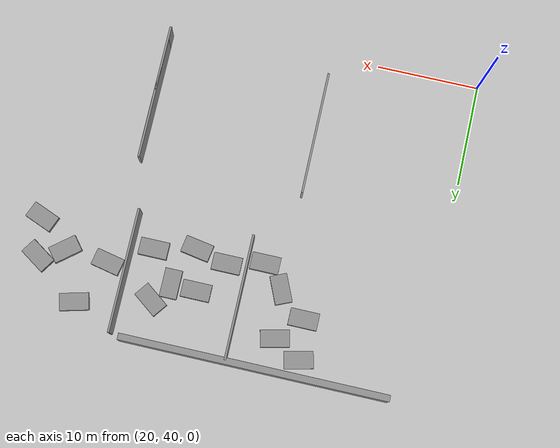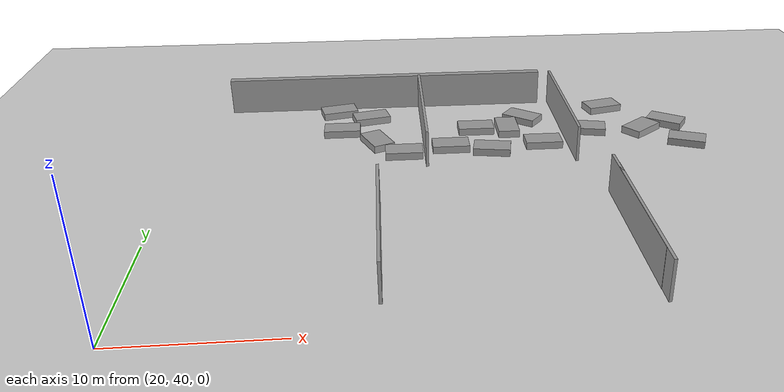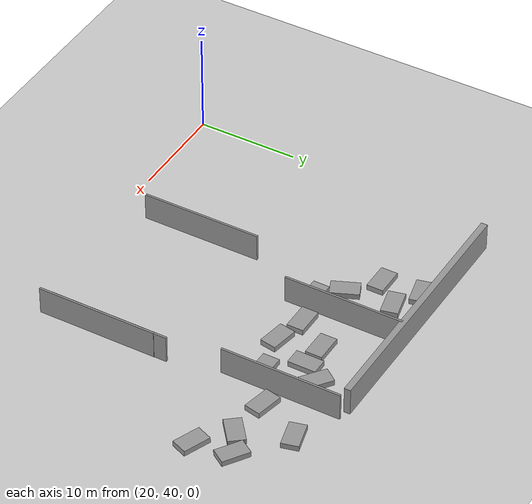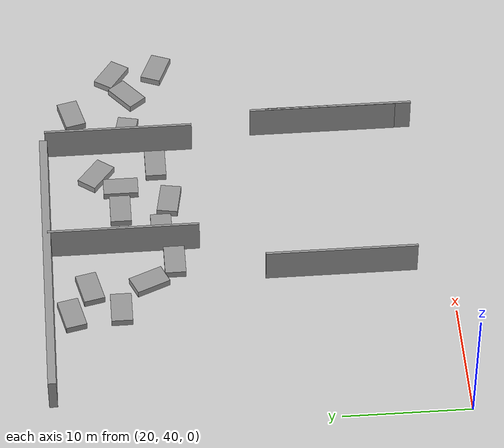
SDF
<sdf version="1.7">
 <world name="default">
  <model name="ground_plane">
   <static>1</static>
   <link name="link">
    <collision name="collision_collision">
     <geometry><plane><normal>0 0 1</normal><size>100 100</size></plane></geometry>
     <surface><friction><ode><mu>100</mu><mu2>50</mu2></ode></friction></surface>
    </collision>
    <visual name="visual">
     <cast_shadows>0</cast_shadows>
     <geometry><plane><normal>0 0 1</normal><size>100 100</size></plane></geometry>
     <material>
      <script><uri>file://media/materials/scripts/gazebo.material</uri><name>Gazebo/Grey</name></script>
     </material>
    </visual>
   </link>
  </model>
  <model name="grey_wall_long_2_clone">
   <link name="link">
    <pose>0 0 1.37589 0 -0 0</pose>
    <inertial>
     <inertia><ixx>0</ixx><ixy>0</ixy><ixz>0</ixz><iyy>0</iyy><iyz>0</iyz><izz>0</izz></inertia>
     <mass>0</mass>
    </inertial>
    <visual name="visual">
     <cast_shadows>0</cast_shadows>
     <geometry><box><size>25.8815 0.642976 2.8</size></box></geometry>
     <material>
      <script>
       <uri>model://grey_wall/materials/scripts</uri>
       <uri>model://grey_wall/materials/textures</uri>
       <name>vrc/grey_wall</name>
      </script>
      <shader type="pixel"><normal_map>__default__</normal_map></shader>
      <ambient>1 1 1 1</ambient>
      <diffuse>1 1 1 1</diffuse>
      <specular>0 0 0 1</specular>
      <emissive>0 0 0 1</emissive>
     </material>
    </visual>
    <collision name="collision_collision">
     <geometry><box><size>25.8815 0.642976 2.8</size></box></geometry>
     <surface>
      <friction>
       <ode><mu>1</mu><mu2>1</mu2><fdir1>0 0 0</fdir1><slip1>0</slip1><slip2>0</slip2></ode>
       <torsional>
        <coefficient>1</coefficient>
        <patch_radius>0</patch_radius>
        <surface_radius>0</surface_radius>
        <use_patch_radius>1</use_patch_radius>
        <ode><slip>0</slip></ode>
       </torsional>
      </friction>
      <bounce><restitution_coefficient>0</restitution_coefficient><threshold>1e+06</threshold></bounce>
      <contact>
       <collide_without_contact>0</collide_without_contact>
       <collide_without_contact_bitmask>1</collide_without_contact_bitmask>
       <collide_bitmask>1</collide_bitmask>
       <ode>
        <soft_cfm>0</soft_cfm>
        <soft_erp>0.2</soft_erp>
        <kp>1e+13</kp>
        <kd>1</kd>
        <max_vel>0.01</max_vel>
        <min_depth>0</min_depth>
       </ode>
       <bullet>
        <split_impulse>1</split_impulse>
        <split_impulse_penetration_threshold>-0.01</split_impulse_penetration_threshold>
        <soft_cfm>0</soft_cfm>
        <soft_erp>0.2</soft_erp>
        <kp>1e+13</kp>
        <kd>1</kd>
       </bullet>
      </contact>
     </surface>
    </collision>
   </link>
   <static>1</static>
   <pose>35.559 71.815 0 0 -0 0</pose>
  </model>
  <model name="grey_wall_12m_vertial_1_clone_0_clone">
   <link name="link">
    <pose>0.289112 -0.003891 1.4 0 0 -1.5701</pose>
    <inertial>
     <inertia><ixx>0</ixx><ixy>0</ixy><ixz>0</ixz><iyy>0</iyy><iyz>0</iyz><izz>0</izz></inertia>
     <mass>0</mass>
    </inertial>
    <visual name="visual">
     <cast_shadows>0</cast_shadows>
     <geometry><box><size>12.0527 0.2 2.8</size></box></geometry>
     <material>
      <script>
       <uri>model://grey_wall/materials/scripts</uri>
       <uri>model://grey_wall/materials/textures</uri>
       <name>vrc/grey_wall</name>
      </script>
      <shader type="pixel"/>
      <ambient>1 1 1 1</ambient>
      <diffuse>1 1 1 1</diffuse>
      <specular>0 0 0 1</specular>
      <emissive>0 0 0 1</emissive>
     </material>
    </visual>
    <collision name="collision_collision">
     <geometry><box><size>12.0527 0.2 2.8</size></box></geometry>
     <surface>
      <friction>
       <ode><mu>1</mu><mu2>1</mu2><fdir1>0 0 0</fdir1><slip1>0</slip1><slip2>0</slip2></ode>
       <torsional>
        <coefficient>1</coefficient>
        <patch_radius>0</patch_radius>
        <surface_radius>0</surface_radius>
        <use_patch_radius>1</use_patch_radius>
        <ode><slip>0</slip></ode>
       </torsional>
      </friction>
      <bounce><restitution_coefficient>0</restitution_coefficient><threshold>1e+06</threshold></bounce>
      <contact>
       <collide_without_contact>0</collide_without_contact>
       <collide_without_contact_bitmask>1</collide_without_contact_bitmask>
       <collide_bitmask>1</collide_bitmask>
       <ode>
        <soft_cfm>0</soft_cfm>
        <soft_erp>0.2</soft_erp>
        <kp>1e+13</kp>
        <kd>1</kd>
        <max_vel>0.01</max_vel>
        <min_depth>0</min_depth>
       </ode>
       <bullet>
        <split_impulse>1</split_impulse>
        <split_impulse_penetration_threshold>-0.01</split_impulse_penetration_threshold>
        <soft_cfm>0</soft_cfm>
        <soft_erp>0.2</soft_erp>
        <kp>1e+13</kp>
        <kd>1</kd>
       </bullet>
      </contact>
     </surface>
    </collision>
   </link>
   <static>1</static>
   <pose>34.3896 48.6444 0 0 -0 0</pose>
  </model>
  <model name="grey_wall_12m_vertial_1_clone_0_clone_0_clone">
   <link name="link">
    <pose>0.289112 -0.003891 1.4 0 0 -1.5701</pose>
    <inertial>
     <inertia><ixx>0</ixx><ixy>0</ixy><ixz>0</ixz><iyy>0</iyy><iyz>0</iyz><izz>0</izz></inertia>
     <mass>0</mass>
    </inertial>
    <visual name="visual">
     <cast_shadows>0</cast_shadows>
     <geometry><box><size>12.0527 0.2 2.8</size></box></geometry>
     <material>
      <script>
       <uri>model://grey_wall/materials/scripts</uri>
       <uri>model://grey_wall/materials/textures</uri>
       <name>vrc/grey_wall</name>
      </script>
      <shader type="pixel"/>
      <ambient>1 1 1 1</ambient>
      <diffuse>1 1 1 1</diffuse>
      <specular>0 0 0 1</specular>
      <emissive>0 0 0 1</emissive>
     </material>
    </visual>
    <collision name="collision_collision">
     <geometry><box><size>12.0527 0.2 2.8</size></box></geometry>
     <surface>
      <friction>
       <ode><mu>1</mu><mu2>1</mu2><fdir1>0 0 0</fdir1><slip1>0</slip1><slip2>0</slip2></ode>
       <torsional>
        <coefficient>1</coefficient>
        <patch_radius>0</patch_radius>
        <surface_radius>0</surface_radius>
        <use_patch_radius>1</use_patch_radius>
        <ode><slip>0</slip></ode>
       </torsional>
      </friction>
      <bounce><restitution_coefficient>0</restitution_coefficient><threshold>1e+06</threshold></bounce>
      <contact>
       <collide_without_contact>0</collide_without_contact>
       <collide_without_contact_bitmask>1</collide_without_contact_bitmask>
       <collide_bitmask>1</collide_bitmask>
       <ode>
        <soft_cfm>0</soft_cfm>
        <soft_erp>0.2</soft_erp>
        <kp>1e+13</kp>
        <kd>1</kd>
        <max_vel>0.01</max_vel>
        <min_depth>0</min_depth>
       </ode>
       <bullet>
        <split_impulse>1</split_impulse>
        <split_impulse_penetration_threshold>-0.01</split_impulse_penetration_threshold>
        <soft_cfm>0</soft_cfm>
        <soft_erp>0.2</soft_erp>
        <kp>1e+13</kp>
        <kd>1</kd>
       </bullet>
      </contact>
     </surface>
    </collision>
   </link>
   <static>1</static>
   <pose>50.4305 48.7141 0 0 -0 0</pose>
  </model>
  <model name="unit_box_clone_clone_7">
   <pose>31.5373 70.106 0.281294 1.5708 0 0.230556</pose>
   <link name="link">
    <inertial>
     <mass>1</mass>
     <inertia>
      <ixx>0.166667</ixx>
      <ixy>0</ixy>
      <ixz>0</ixz>
      <iyy>0.166667</iyy>
      <iyz>0</iyz>
      <izz>0.166667</izz>
     </inertia>
    </inertial>
    <collision name="collision_collision">
     <geometry><box><size>2.81196 0.562598 1.66888</size></box></geometry>
    </collision>
    <visual name="visual">
     <geometry><box><size>2.81196 0.562598 1.66888</size></box></geometry>
     <material>
      <script><name>Gazebo/Grey</name><uri>file://media/materials/scripts/gazebo.material</uri></script>
     </material>
    </visual>
   </link>
  </model>
  <model name="unit_box_clone_clone_8">
   <pose>34.6328 63.8858 0.281299 1.5708 -0 1.98273</pose>
   <link name="link">
    <inertial>
     <mass>1</mass>
     <inertia>
      <ixx>0.166667</ixx>
      <ixy>0</ixy>
      <ixz>0</ixz>
      <iyy>0.166667</iyy>
      <iyz>0</iyz>
      <izz>0.166667</izz>
     </inertia>
    </inertial>
    <collision name="collision_collision">
     <geometry><box><size>2.81196 0.562598 1.66888</size></box></geometry>
    </collision>
    <visual name="visual">
     <geometry><box><size>2.81196 0.562598 1.66888</size></box></geometry>
     <material>
      <script><name>Gazebo/Grey</name><uri>file://media/materials/scripts/gazebo.material</uri></script>
     </material>
    </visual>
   </link>
  </model>
  <model name="unit_box_clone_clone_10">
   <pose>34.1826 68.6036 0.281294 1.5708 -0 0.229751</pose>
   <link name="link">
    <inertial>
     <mass>1</mass>
     <inertia>
      <ixx>0.166667</ixx>
      <ixy>0</ixy>
      <ixz>0</ixz>
      <iyy>0.166667</iyy>
      <iyz>0</iyz>
      <izz>0.166667</izz>
     </inertia>
    </inertial>
    <collision name="collision_collision">
     <geometry><box><size>2.81196 0.562598 1.66888</size></box></geometry>
    </collision>
    <visual name="visual">
     <geometry><box><size>2.81196 0.562598 1.66888</size></box></geometry>
     <material>
      <script><name>Gazebo/Grey</name><uri>file://media/materials/scripts/gazebo.material</uri></script>
     </material>
    </visual>
   </link>
  </model>
  <model name="unit_box_clone_clone_12">
   <pose>43.3543 61.8518 0.281287 -1.57078 -0 -0.170834</pose>
   <link name="link">
    <inertial>
     <mass>1</mass>
     <inertia>
      <ixx>0.166667</ixx>
      <ixy>0</ixy>
      <ixz>0</ixz>
      <iyy>0.166667</iyy>
      <iyz>0</iyz>
      <izz>0.166667</izz>
     </inertia>
    </inertial>
    <collision name="collision_collision">
     <geometry><box><size>2.81196 0.562598 1.66888</size></box></geometry>
    </collision>
    <visual name="visual">
     <geometry><box><size>2.81196 0.562598 1.66888</size></box></geometry>
     <material>
      <script><name>Gazebo/Grey</name><uri>file://media/materials/scripts/gazebo.material</uri></script>
     </material>
    </visual>
   </link>
  </model>
  <model name="unit_box_clone_clone_13">
   <pose>42.5179 65.8413 0.281103 1.5708 -0.00014 3.1415</pose>
   <link name="link">
    <inertial>
     <mass>1</mass>
     <inertia>
      <ixx>0.166667</ixx>
      <ixy>0</ixy>
      <ixz>0</ixz>
      <iyy>0.166667</iyy>
      <iyz>0</iyz>
      <izz>0.166667</izz>
     </inertia>
    </inertial>
    <collision name="collision_collision">
     <geometry><box><size>2.81196 0.562598 1.66888</size></box></geometry>
    </collision>
    <visual name="visual">
     <geometry><box><size>2.81196 0.562598 1.66888</size></box></geometry>
     <material>
      <script><name>Gazebo/Grey</name><uri>file://media/materials/scripts/gazebo.material</uri></script>
     </material>
    </visual>
   </link>
  </model>
  <model name="unit_box_clone_clone_15">
   <pose>45.0326 65.7121 0.281103 -1.5708 -0.00014 1.57076</pose>
   <link name="link">
    <inertial>
     <mass>1</mass>
     <inertia>
      <ixx>0.166667</ixx>
      <ixy>0</ixy>
      <ixz>0</ixz>
      <iyy>0.166667</iyy>
      <iyz>0</iyz>
      <izz>0.166667</izz>
     </inertia>
    </inertial>
    <collision name="collision_collision">
     <geometry><box><size>2.81196 0.562598 1.66888</size></box></geometry>
    </collision>
    <visual name="visual">
     <geometry><box><size>2.81196 0.562598 1.66888</size></box></geometry>
     <material>
      <script><name>Gazebo/Grey</name><uri>file://media/materials/scripts/gazebo.material</uri></script>
     </material>
    </visual>
   </link>
  </model>
  <model name="unit_box_clone_clone_16">
   <pose>46.5557 67.6461 0.281287 -1.57081 -0 -0.642577</pose>
   <link name="link">
    <inertial>
     <mass>1</mass>
     <inertia>
      <ixx>0.166667</ixx>
      <ixy>0</ixy>
      <ixz>0</ixz>
      <iyy>0.166667</iyy>
      <iyz>0</iyz>
      <izz>0.166667</izz>
     </inertia>
    </inertial>
    <collision name="collision_collision">
     <geometry><box><size>2.81196 0.562598 1.66888</size></box></geometry>
    </collision>
    <visual name="visual">
     <geometry><box><size>2.81196 0.562598 1.66888</size></box></geometry>
     <material>
      <script><name>Gazebo/Grey</name><uri>file://media/materials/scripts/gazebo.material</uri></script>
     </material>
    </visual>
   </link>
  </model>
  <model name="unit_box_clone_clone_17">
   <pose>55.7464 64.7263 0.281282 1.5708 -1.2e-05 0.679947</pose>
   <link name="link">
    <inertial>
     <mass>1</mass>
     <inertia>
      <ixx>0.166667</ixx>
      <ixy>0</ixy>
      <ixz>0</ixz>
      <iyy>0.166667</iyy>
      <iyz>0</iyz>
      <izz>0.166667</izz>
     </inertia>
    </inertial>
    <collision name="collision_collision">
     <geometry><box><size>2.81196 0.562598 1.66888</size></box></geometry>
    </collision>
    <visual name="visual">
     <geometry><box><size>2.81196 0.562598 1.66888</size></box></geometry>
     <material>
      <script><name>Gazebo/Grey</name><uri>file://media/materials/scripts/gazebo.material</uri></script>
     </material>
    </visual>
   </link>
  </model>
  <model name="unit_box_clone_clone_18">
   <pose>51.4502 65.0273 0.281294 -1.5708 0 -0.206509</pose>
   <link name="link">
    <inertial>
     <mass>1</mass>
     <inertia>
      <ixx>0.166667</ixx>
      <ixy>0</ixy>
      <ixz>0</ixz>
      <iyy>0.166667</iyy>
      <iyz>0</iyz>
      <izz>0.166667</izz>
     </inertia>
    </inertial>
    <collision name="collision_collision">
     <geometry><box><size>2.81196 0.562598 1.66888</size></box></geometry>
    </collision>
    <visual name="visual">
     <geometry><box><size>2.81196 0.562598 1.66888</size></box></geometry>
     <material>
      <script><name>Gazebo/Grey</name><uri>file://media/materials/scripts/gazebo.material</uri></script>
     </material>
    </visual>
   </link>
  </model>
  <model name="unit_box_clone_clone_19">
   <pose>53.6586 69.4496 0.281287 1.57078 -0 0.251907</pose>
   <link name="link">
    <inertial>
     <mass>1</mass>
     <inertia>
      <ixx>0.166667</ixx>
      <ixy>0</ixy>
      <ixz>0</ixz>
      <iyy>0.166667</iyy>
      <iyz>0</iyz>
      <izz>0.166667</izz>
     </inertia>
    </inertial>
    <collision name="collision_collision">
     <geometry><box><size>2.81196 0.562598 1.66888</size></box></geometry>
    </collision>
    <visual name="visual">
     <geometry><box><size>2.81196 0.562598 1.66888</size></box></geometry>
     <material>
      <script><name>Gazebo/Grey</name><uri>file://media/materials/scripts/gazebo.material</uri></script>
     </material>
    </visual>
   </link>
  </model>
  <model name="unit_box_clone_clone_21">
   <pose>58.6935 62.1491 0.281287 -1.57081 -0 -0.380873</pose>
   <link name="link">
    <inertial>
     <mass>1</mass>
     <inertia>
      <ixx>0.166667</ixx>
      <ixy>0</ixy>
      <ixz>0</ixz>
      <iyy>0.166667</iyy>
      <iyz>0</iyz>
      <izz>0.166667</izz>
     </inertia>
    </inertial>
    <collision name="collision_collision">
     <geometry><box><size>2.81196 0.562598 1.66888</size></box></geometry>
    </collision>
    <visual name="visual">
     <geometry><box><size>2.81196 0.562598 1.66888</size></box></geometry>
     <material>
      <script><name>Gazebo/Grey</name><uri>file://media/materials/scripts/gazebo.material</uri></script>
     </material>
    </visual>
   </link>
  </model>
  <model name="unit_box_clone_clone_22">
   <pose>58.1543 65.9202 0.281299 -1.5708 -0 -0.586752</pose>
   <link name="link">
    <inertial>
     <mass>1</mass>
     <inertia>
      <ixx>0.166667</ixx>
      <ixy>0</ixy>
      <ixz>0</ixz>
      <iyy>0.166667</iyy>
      <iyz>0</iyz>
      <izz>0.166667</izz>
     </inertia>
    </inertial>
    <collision name="collision_collision">
     <geometry><box><size>2.81196 0.562598 1.66888</size></box></geometry>
    </collision>
    <visual name="visual">
     <geometry><box><size>2.81196 0.562598 1.66888</size></box></geometry>
     <material>
      <script><name>Gazebo/Grey</name><uri>file://media/materials/scripts/gazebo.material</uri></script>
     </material>
    </visual>
   </link>
  </model>
  <model name="grey_wall_12m_vertial_1_clone_0_clone_0_clone_clone">
   <link name="link">
    <pose>0.289112 -0.003891 1.4 0 0 -1.5701</pose>
    <inertial>
     <inertia><ixx>0</ixx><ixy>0</ixy><ixz>0</ixz><iyy>0</iyy><iyz>0</iyz><izz>0</izz></inertia>
     <mass>0</mass>
    </inertial>
    <visual name="visual">
     <cast_shadows>0</cast_shadows>
     <geometry><box><size>12.0527 0.2 2.8</size></box></geometry>
     <material>
      <script>
       <uri>model://grey_wall/materials/scripts</uri>
       <uri>model://grey_wall/materials/textures</uri>
       <name>vrc/grey_wall</name>
      </script>
      <shader type="pixel"/>
      <ambient>1 1 1 1</ambient>
      <diffuse>1 1 1 1</diffuse>
      <specular>0 0 0 1</specular>
      <emissive>0 0 0 1</emissive>
     </material>
    </visual>
    <collision name="collision_collision">
     <geometry><box><size>12.0527 0.2 2.8</size></box></geometry>
     <surface>
      <friction>
       <ode><mu>1</mu><mu2>1</mu2><fdir1>0 0 0</fdir1><slip1>0</slip1><slip2>0</slip2></ode>
       <torsional>
        <coefficient>1</coefficient>
        <patch_radius>0</patch_radius>
        <surface_radius>0</surface_radius>
        <use_patch_radius>1</use_patch_radius>
        <ode><slip>0</slip></ode>
       </torsional>
      </friction>
      <bounce><restitution_coefficient>0</restitution_coefficient><threshold>1e+06</threshold></bounce>
      <contact>
       <collide_without_contact>0</collide_without_contact>
       <collide_without_contact_bitmask>1</collide_without_contact_bitmask>
       <collide_bitmask>1</collide_bitmask>
       <ode>
        <soft_cfm>0</soft_cfm>
        <soft_erp>0.2</soft_erp>
        <kp>1e+13</kp>
        <kd>1</kd>
        <max_vel>0.01</max_vel>
        <min_depth>0</min_depth>
       </ode>
       <bullet>
        <split_impulse>1</split_impulse>
        <split_impulse_penetration_threshold>-0.01</split_impulse_penetration_threshold>
        <soft_cfm>0</soft_cfm>
        <soft_erp>0.2</soft_erp>
        <kp>1e+13</kp>
        <kd>1</kd>
       </bullet>
      </contact>
     </surface>
    </collision>
   </link>
   <static>1</static>
   <pose>50.4499 47.4306 0 0 -0 0</pose>
  </model>
  <model name="grey_wall_12m_vertial_2_clone_clone_2_clone_clone_0">
   <link name="link">
    <pose>0.289112 -0.003891 1.4 0 0 -1.5701</pose>
    <inertial>
     <inertia><ixx>0</ixx><ixy>0</ixy><ixz>0</ixz><iyy>0</iyy><iyz>0</iyz><izz>0</izz></inertia>
     <mass>0</mass>
    </inertial>
    <visual name="visual">
     <cast_shadows>0</cast_shadows>
     <geometry><box><size>12.0527 0.2 2.8</size></box></geometry>
     <material>
      <script>
       <uri>model://grey_wall/materials/scripts</uri>
       <uri>model://grey_wall/materials/textures</uri>
       <name>vrc/grey_wall</name>
      </script>
      <shader type="pixel"/>
      <ambient>1 1 1 1</ambient>
      <diffuse>1 1 1 1</diffuse>
      <specular>0 0 0 1</specular>
      <emissive>0 0 0 1</emissive>
     </material>
    </visual>
    <collision name="collision_collision">
     <geometry><box><size>12.0527 0.2 2.8</size></box></geometry>
     <surface>
      <friction>
       <ode><mu>1</mu><mu2>1</mu2><fdir1>0 0 0</fdir1><slip1>0</slip1><slip2>0</slip2></ode>
       <torsional>
        <coefficient>1</coefficient>
        <patch_radius>0</patch_radius>
        <surface_radius>0</surface_radius>
        <use_patch_radius>1</use_patch_radius>
        <ode><slip>0</slip></ode>
       </torsional>
      </friction>
      <bounce><restitution_coefficient>0</restitution_coefficient><threshold>1e+06</threshold></bounce>
      <contact>
       <collide_without_contact>0</collide_without_contact>
       <collide_without_contact_bitmask>1</collide_without_contact_bitmask>
       <collide_bitmask>1</collide_bitmask>
       <ode>
        <soft_cfm>0</soft_cfm>
        <soft_erp>0.2</soft_erp>
        <kp>1e+13</kp>
        <kd>1</kd>
        <max_vel>0.01</max_vel>
        <min_depth>0</min_depth>
       </ode>
       <bullet>
        <split_impulse>1</split_impulse>
        <split_impulse_penetration_threshold>-0.01</split_impulse_penetration_threshold>
        <soft_cfm>0</soft_cfm>
        <soft_erp>0.2</soft_erp>
        <kp>1e+13</kp>
        <kd>1</kd>
       </bullet>
      </contact>
     </surface>
    </collision>
   </link>
   <static>1</static>
   <pose>37.9964 65.7219 0 0 -0 0</pose>
  </model>
  <model name="grey_wall_12m_vertial_2_clone_clone_2_clone_clone_1">
   <link name="link">
    <pose>0.289112 -0.003891 1.4 0 0 -1.5701</pose>
    <inertial>
     <inertia><ixx>0</ixx><ixy>0</ixy><ixz>0</ixz><iyy>0</iyy><iyz>0</iyz><izz>0</izz></inertia>
     <mass>0</mass>
    </inertial>
    <visual name="visual">
     <cast_shadows>0</cast_shadows>
     <geometry><box><size>12.0527 0.2 2.8</size></box></geometry>
     <material>
      <script>
       <uri>model://grey_wall/materials/scripts</uri>
       <uri>model://grey_wall/materials/textures</uri>
       <name>vrc/grey_wall</name>
      </script>
      <shader type="pixel"/>
      <ambient>1 1 1 1</ambient>
      <diffuse>1 1 1 1</diffuse>
      <specular>0 0 0 1</specular>
      <emissive>0 0 0 1</emissive>
     </material>
    </visual>
    <collision name="collision_collision">
     <geometry><box><size>12.0527 0.2 2.8</size></box></geometry>
     <surface>
      <friction>
       <ode><mu>1</mu><mu2>1</mu2><fdir1>0 0 0</fdir1><slip1>0</slip1><slip2>0</slip2></ode>
       <torsional>
        <coefficient>1</coefficient>
        <patch_radius>0</patch_radius>
        <surface_radius>0</surface_radius>
        <use_patch_radius>1</use_patch_radius>
        <ode><slip>0</slip></ode>
       </torsional>
      </friction>
      <bounce><restitution_coefficient>0</restitution_coefficient><threshold>1e+06</threshold></bounce>
      <contact>
       <collide_without_contact>0</collide_without_contact>
       <collide_without_contact_bitmask>1</collide_without_contact_bitmask>
       <collide_bitmask>1</collide_bitmask>
       <ode>
        <soft_cfm>0</soft_cfm>
        <soft_erp>0.2</soft_erp>
        <kp>1e+13</kp>
        <kd>1</kd>
        <max_vel>0.01</max_vel>
        <min_depth>0</min_depth>
       </ode>
       <bullet>
        <split_impulse>1</split_impulse>
        <split_impulse_penetration_threshold>-0.01</split_impulse_penetration_threshold>
        <soft_cfm>0</soft_cfm>
        <soft_erp>0.2</soft_erp>
        <kp>1e+13</kp>
        <kd>1</kd>
       </bullet>
      </contact>
     </surface>
    </collision>
   </link>
   <static>1</static>
   <pose>49.1711 65.6593 0 0 -0 0</pose>
  </model>
  <model name="unit_box_clone_clone_6_clone_0">
   <pose>36.6408 61.7767 0.281103 -1.5708 0.00014 0.000555</pose>
   <link name="link">
    <inertial>
     <mass>1</mass>
     <inertia>
      <ixx>0.166667</ixx>
      <ixy>0</ixy>
      <ixz>0</ixz>
      <iyy>0.166667</iyy>
      <iyz>0</iyz>
      <izz>0.166667</izz>
     </inertia>
    </inertial>
    <collision name="collision_collision">
     <geometry><box><size>2.81196 0.562598 1.66888</size></box></geometry>
    </collision>
    <visual name="visual">
     <geometry><box><size>2.81196 0.562598 1.66888</size></box></geometry>
     <material>
      <script><name>Gazebo/Grey</name><uri>file://media/materials/scripts/gazebo.material</uri></script>
     </material>
    </visual>
   </link>
  </model>
  <model name="unit_box_clone_clone_6_clone_1">
   <pose>31.891 66.223 0.281103 -1.5708 0.00014 -6.4e-05</pose>
   <link name="link">
    <inertial>
     <mass>1</mass>
     <inertia>
      <ixx>0.166667</ixx>
      <ixy>0</ixy>
      <ixz>0</ixz>
      <iyy>0.166667</iyy>
      <iyz>0</iyz>
      <izz>0.166667</izz>
     </inertia>
    </inertial>
    <collision name="collision_collision">
     <geometry><box><size>2.81196 0.562598 1.66888</size></box></geometry>
    </collision>
    <visual name="visual">
     <geometry><box><size>2.81196 0.562598 1.66888</size></box></geometry>
     <material>
      <script><name>Gazebo/Grey</name><uri>file://media/materials/scripts/gazebo.material</uri></script>
     </material>
    </visual>
   </link>
  </model>
  <model name="unit_box_clone_clone_6_clone_2">
   <pose>40.2434 62.6377 0.281103 -1.5708 -0.00014 -6.6e-05</pose>
   <link name="link">
    <inertial>
     <mass>1</mass>
     <inertia>
      <ixx>0.166667</ixx>
      <ixy>0</ixy>
      <ixz>0</ixz>
      <iyy>0.166667</iyy>
      <iyz>0</iyz>
      <izz>0.166667</izz>
     </inertia>
    </inertial>
    <collision name="collision_collision">
     <geometry><box><size>2.81196 0.562598 1.66888</size></box></geometry>
    </collision>
    <visual name="visual">
     <geometry><box><size>2.81196 0.562598 1.66888</size></box></geometry>
     <material>
      <script><name>Gazebo/Grey</name><uri>file://media/materials/scripts/gazebo.material</uri></script>
     </material>
    </visual>
   </link>
  </model>
  <model name="unit_box_clone_clone_6_clone_3">
   <pose>47.4367 62.7661 0.281103 -1.5708 0.00014 -6.8e-05</pose>
   <link name="link">
    <inertial>
     <mass>1</mass>
     <inertia>
      <ixx>0.166667</ixx>
      <ixy>0</ixy>
      <ixz>0</ixz>
      <iyy>0.166667</iyy>
      <iyz>0</iyz>
      <izz>0.166667</izz>
     </inertia>
    </inertial>
    <collision name="collision_collision">
     <geometry><box><size>2.81196 0.562598 1.66888</size></box></geometry>
    </collision>
    <visual name="visual">
     <geometry><box><size>2.81196 0.562598 1.66888</size></box></geometry>
     <material>
      <script><name>Gazebo/Grey</name><uri>file://media/materials/scripts/gazebo.material</uri></script>
     </material>
    </visual>
   </link>
  </model>
 </world>
</sdf>
